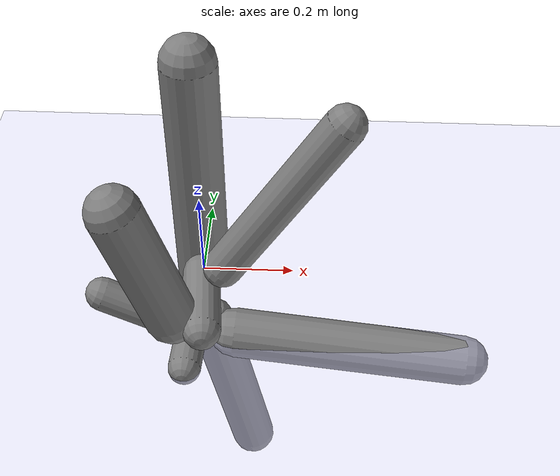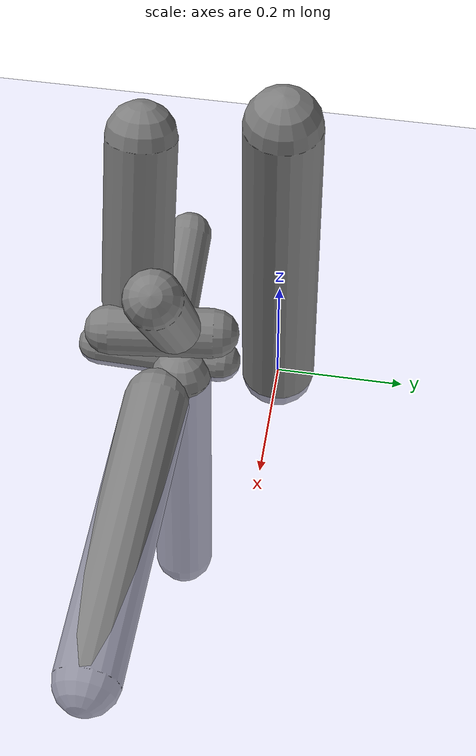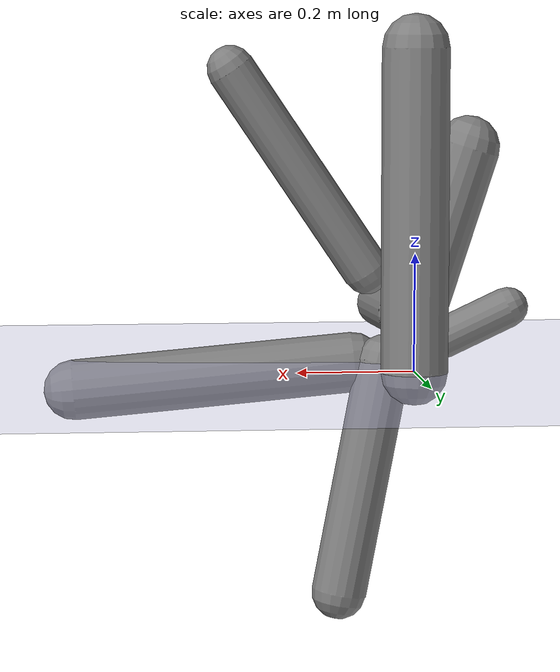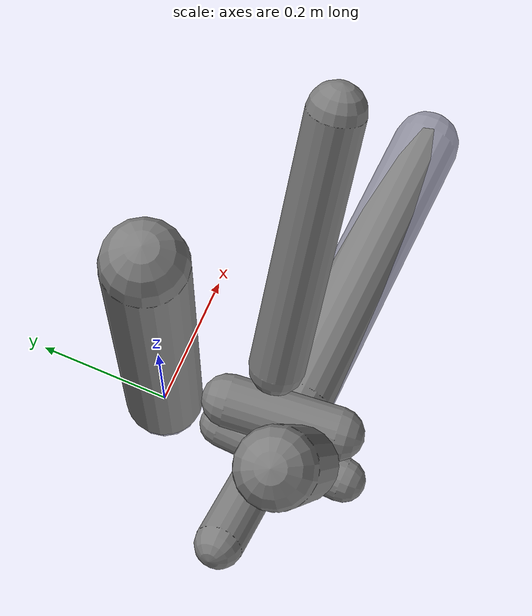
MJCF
<?xml version='1.0' encoding='UTF-8'?>
<mujoco model="robot_model">
  <worldbody>
    <light name="light" pos="0 -3 10" dir="0 0.5 -1" diffuse=".8 .8 .8" specular="0.1 0.1 0.1"/>
    <geom name="floor" type="plane" size="10.0 10.0 0.1" pos="0 0 0" rgba="0.8 0.8 1 1" contype="2" conaffinity="1"/>
    <body name="limb0" pos="0 0 0">
      <geom name="limb0_geom" type="capsule" fromto="0 0 0 0 0 0.5470083169499173" size="0.057836787838581885" density="891.8218610802887" contype="1" conaffinity="2"/>
      <site type="sphere" size="0.01" name="limb0_site0" pos="0.010330055117519865 -0.10117366212855321 0.08640972790344305" quat="0.7071067811865476 0.7034496051453099 0.07182376362254696 0.0"/>
      <site type="sphere" size="0.01" name="limb0_site1" pos="-0.0033851629676613613 -0.09583828138487074 0.0001644799893113902" quat="0.7071067811865476 0.7066660944373666 -0.024960588387271467 0.0"/>
      <freejoint name="limb0_root"/>
      <body name="limb1" pos="0.010330055117519865 -0.10117366212855321 0.08640972790344305" quat="0.7071067811865476 0.7034496051453099 0.07182376362254696 0.0">
        <geom name="limb1_geom" type="capsule" fromto="0 0 0 0 0 0.16541736647859212" size="0.03986286775195412" density="938.9867501818189" contype="1" conaffinity="2"/>
        <site type="sphere" size="0.01" name="limb1_site0" pos="0.026633378787070765 -0.08826909254652687 0.05331182125747389" quat="0.7071067811865476 0.6769623914226275 0.2042594443333214 0.0"/>
        <site type="sphere" size="0.01" name="limb1_site1" pos="0.040541256684942704 0.07487861864630929 0.05798785370287568" quat="0.7071067811865476 -0.6218158844110192 0.33666750050181826 0.0"/>
        <body name="limb2" pos="0.026633378787070765 -0.08826909254652687 0.05331182125747389" quat="0.7071067811865476 0.6769623914226275 0.2042594443333214 0.0">
          <geom name="limb2_geom" type="capsule" fromto="0 0 0 0 0 0.4156618494820584" size="0.04833675027655464" density="1039.3571037728918" contype="1" conaffinity="2"/>
          <joint name="joint_limb1_limb2_0" type="hinge" axis="0 0 1" range="-72.11582772818501 72.11582772818501" damping="5.0"/>
        </body>
        <body name="limb3" pos="0.040541256684942704 0.07487861864630929 0.05798785370287568" quat="0.7071067811865476 -0.6218158844110192 0.33666750050181826 0.0">
          <geom name="limb3_geom" type="capsule" fromto="0 0 0 0 0 0.425297638145677" size="0.041286418938973765" density="1197.6082344579934" contype="1" conaffinity="2"/>
          <joint name="joint_limb1_limb3_0" type="hinge" axis="0 0 1" range="-59.16747994539028 59.16747994539028" damping="5.0"/>
        </body>
        <joint name="joint_limb0_limb1_0" type="hinge" axis="1 0 0" range="-70.74698605445272 70.74698605445272" damping="5.0"/>
      </body>
      <body name="limb4" pos="-0.0033851629676613613 -0.09583828138487074 0.0001644799893113902" quat="0.7071067811865476 0.7066660944373666 -0.024960588387271467 0.0">
        <geom name="limb4_geom" type="capsule" fromto="0 0 0 0 0 0.19836517578497903" size="0.03406125962393577" density="799.5604343836054" contype="1" conaffinity="2"/>
        <site type="sphere" size="0.01" name="limb4_site0" pos="0.09016611006153107 -0.011569843723560494 0.08412795753665127" quat="0.7071067811865476 0.0899959350022646 0.7013563514242015 0.0"/>
        <site type="sphere" size="0.01" name="limb4_site1" pos="-0.025781962043266847 0.09103430365001546 0.13916677193207908" quat="0.7071067811865476 -0.6803480675143211 -0.19268239937661344 0.0"/>
        <site type="sphere" size="0.01" name="limb4_site2" pos="-0.0654143113987107 0.033986567902243296 0.08500733470009711" quat="0.7071067811865476 -0.3260076134473962 -0.6274703466892543 0.0"/>
        <body name="limb5" pos="0.09016611006153107 -0.011569843723560494 0.08412795753665127" quat="0.7071067811865476 0.0899959350022646 0.7013563514242015 0.0">
          <geom name="limb5_geom" type="capsule" fromto="0 0 0 0 0 0.49273132914871753" size="0.05284412353578555" density="1075.0324498949815" contype="1" conaffinity="2"/>
          <joint name="joint_limb4_limb5_0" type="hinge" axis="0 1 0" range="-70.36769792005789 70.36769792005789" damping="5.0"/>
        </body>
        <body name="limb6" pos="-0.025781962043266847 0.09103430365001546 0.13916677193207908" quat="0.7071067811865476 -0.6803480675143211 -0.19268239937661344 0.0">
          <geom name="limb6_geom" type="capsule" fromto="0 0 0 0 0 0.29045882878750123" size="0.05655350670692651" density="1091.0289928776679" contype="1" conaffinity="2"/>
          <joint name="joint_limb4_limb6_0" type="hinge" axis="1 0 0" range="-77.0684785859499 77.0684785859499" damping="5.0"/>
        </body>
        <body name="limb7" pos="-0.0654143113987107 0.033986567902243296 0.08500733470009711" quat="0.7071067811865476 -0.3260076134473962 -0.6274703466892543 0.0">
          <geom name="limb7_geom" type="capsule" fromto="0 0 0 0 0 0.12949640535912238" size="0.035655217052186564" density="780.9335705735965" contype="1" conaffinity="2"/>
          <joint name="joint_limb4_limb7_0" type="hinge" axis="1 0 0" range="-32.269066017607344 32.269066017607344" damping="5.0"/>
        </body>
        <joint name="joint_limb0_limb4_0" type="hinge" axis="1 0 0" range="-33.893167912019756 33.893167912019756" damping="5.0"/>
      </body>
    </body>
  </worldbody>
  <actuator>
    <position name="position_actuator_joint_limb0_limb1_0" joint="joint_limb0_limb1_0" gear="1.6844985986898056" inheritrange="1" forcerange="-38.83958844948795 38.83958844948795" forcelimited="true" kp="100.0"/>
    <position name="position_actuator_joint_limb1_limb2_0" joint="joint_limb1_limb2_0" gear="1.1734759715148397" inheritrange="1" forcerange="-18.313910369357625 18.313910369357625" forcelimited="true" kp="100.0"/>
    <position name="position_actuator_joint_limb1_limb3_0" joint="joint_limb1_limb3_0" gear="1.6295749847985146" inheritrange="1" forcerange="-15.402933381738091 15.402933381738091" forcelimited="true" kp="100.0"/>
    <position name="position_actuator_joint_limb0_limb4_0" joint="joint_limb0_limb4_0" gear="1.5556786539001968" inheritrange="1" forcerange="-52.92435946604856 52.92435946604856" forcelimited="true" kp="100.0"/>
    <position name="position_actuator_joint_limb4_limb5_0" joint="joint_limb4_limb5_0" gear="1.6301698078758577" inheritrange="1" forcerange="-26.557666178162428 26.557666178162428" forcelimited="true" kp="100.0"/>
    <position name="position_actuator_joint_limb4_limb6_0" joint="joint_limb4_limb6_0" gear="0.6407677301499594" inheritrange="1" forcerange="-20.05369185431183 20.05369185431183" forcelimited="true" kp="100.0"/>
    <position name="position_actuator_joint_limb4_limb7_0" joint="joint_limb4_limb7_0" gear="1.900653364935264" inheritrange="1" forcerange="-2.76085394119477 2.76085394119477" forcelimited="true" kp="100.0"/>
  </actuator>
  <contact>
    <pair geom1="limb0_geom" geom2="limb1_geom"/>
    <pair geom1="limb1_geom" geom2="limb2_geom"/>
    <pair geom1="limb1_geom" geom2="limb3_geom"/>
    <pair geom1="limb0_geom" geom2="limb4_geom"/>
    <pair geom1="limb4_geom" geom2="limb5_geom"/>
    <pair geom1="limb4_geom" geom2="limb6_geom"/>
    <pair geom1="limb4_geom" geom2="limb7_geom"/>
  </contact>
</mujoco>
